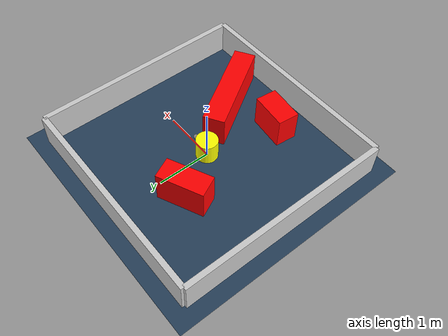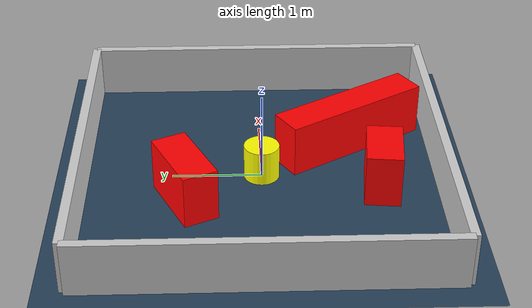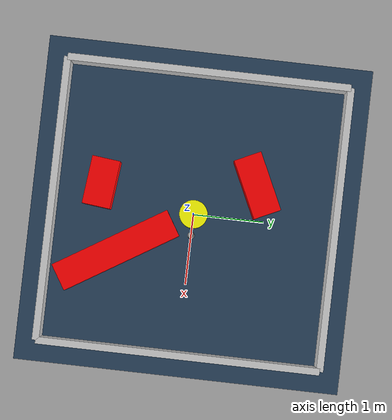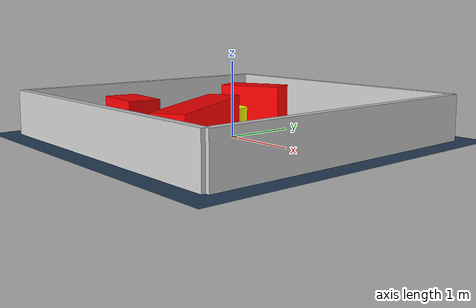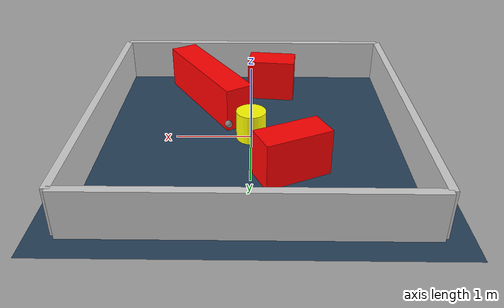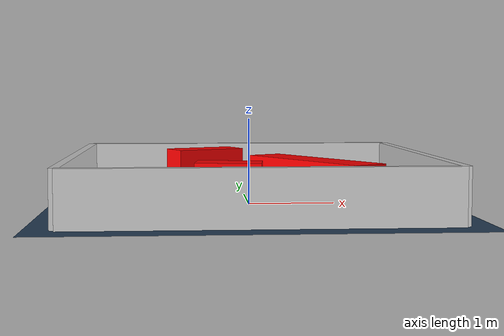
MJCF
<?xml version="1.0" ?>
<mujoco model="generated_environment">
  <option timestep="0.01" integrator="RK4" cone="elliptic"/>
  <default>
    <geom density="1"/>
  </default>
  <asset>
    <texture builtin="gradient" height="3072" rgb1="0.3 0.5 0.7" rgb2="0 0 0" type="skybox" width="512"/>
    <texture builtin="checker" height="300" mark="edge" markrgb="0.8 0.8 0.8" name="groundplane" rgb1="0.2 0.3 0.4" rgb2="0.1 0.2 0.3" type="2d" width="300"/>
    <material name="groundplane" reflectance="0.2" texrepeat="5 5" texture="groundplane" texuniform="true"/>
    <material name="robot" rgba="0.0 1.0 0.0 1"/>
  </asset>
  <worldbody>
    <light dir="0 0 -1" directional="true" pos="0 0 1.5"/>
    <geom condim="4" friction="1.0 0.005 0.001" material="groundplane" name="floor" size="0 0 0.05" type="plane"/>
    <body name="walls">
      <geom name="wall_1" condim="4" pos="-2.0 0.0 0.3" rgba="0.800000011920929 0.800000011920929 0.800000011920929 1.0" size="0.05 2.0 0.3" type="box"/>
      <geom name="wall_2" condim="4" pos="2.0 0.0 0.3" rgba="0.800000011920929 0.800000011920929 0.800000011920929 1.0" size="0.05 2.0 0.3" type="box"/>
      <geom name="wall_3" condim="4" pos="0.0 -2.0 0.3" rgba="0.800000011920929 0.800000011920929 0.800000011920929 1.0" size="2.0 0.05 0.3" type="box"/>
      <geom name="wall_4" condim="4" pos="0.0 2.0 0.3" rgba="0.800000011920929 0.800000011920929 0.800000011920929 1.0" size="2.0 0.05 0.3" type="box"/>
    </body>
    <body name="robot">
      <joint name="joint_x" type="slide" pos="0 0 0" axis="1 0 0"/>
      <joint name="joint_y" type="slide" pos="0 0 0" axis="0 1 0"/>
      <geom name="robot" type="sphere" pos="0.3 0.0 0.2" size="0.05" mass="5." friction="1.0 0.005 0.0001" condim="4" rgba="0.5 0.5 0.5 1.0"/>
      <site name="sensor_ball"/>
    </body>
    <body name="obstacle_movable_1">
      <geom name="obstacle_movable_1" condim="4" pos="0.0 0.0 0.2" euler="0 0 0.0" friction="1.0 0.005 0.001" rgba="1.0 1.0 0.0 1.0" size="0.2 0.2 0.0" type="cylinder" mass="0.1"/>
      <joint type="free"/>
    </body>
    <body name="obstacle_2_static">
      <geom name="obstacle_2_static" condim="4" pos="0.6265056715668396 -1.0279168690244442 0.3" euler="0 0 121.66633556756383" friction="1.0 0.005 0.001" rgba="1 0 0 1" size="0.892706588105842 0.2 0.3" type="box"/>
    </body>
    <body name="obstacle_3_static">
      <geom name="obstacle_3_static" condim="4" pos="-0.49819669107858844 0.8472076479526554 0.3" euler="0 0 25.210331244601477" friction="1.0 0.005 0.001" rgba="1 0 0 1" size="0.43248711802547907 0.2 0.3" type="box"/>
    </body>
    <body name="obstacle_4_static">
      <geom name="obstacle_4_static" condim="4" pos="-0.2988645082048229 -1.3349364168784263 0.3" euler="0 0 353.74270589730764" friction="1.0 0.005 0.001" rgba="1 0 0 1" size="0.34081529248581244 0.2 0.3" type="box"/>
    </body>
  </worldbody>
  <actuator>
    <motor name="actuator_x" joint="joint_x" gear="1" ctrlrange="-1 1"/>
    <motor name="actuator_y" joint="joint_y" gear="1" ctrlrange="-1 1"/>
  </actuator>
</mujoco>
